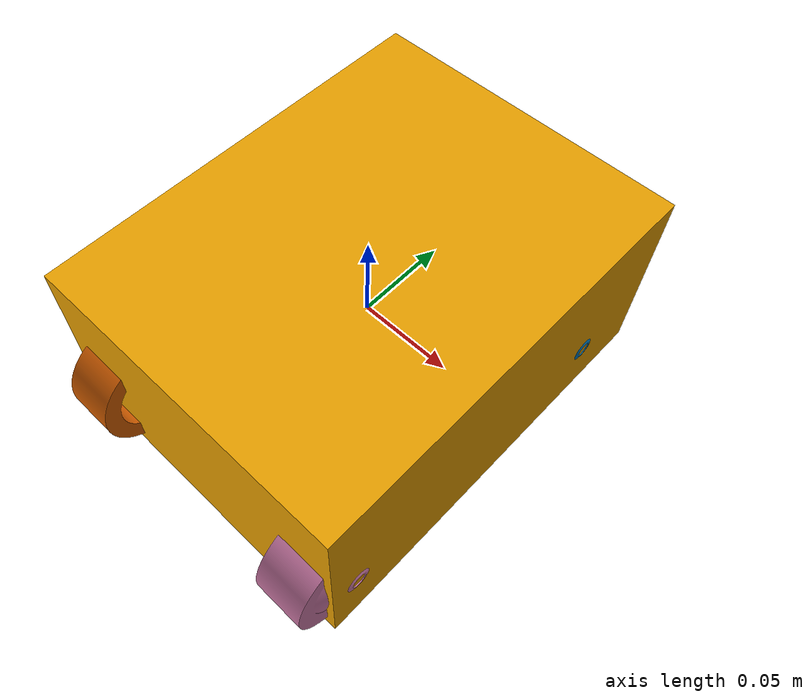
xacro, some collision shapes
<?xml version="1.0"?>
<robot name="car_like" xmlns:xacro="http://ros.org/wiki/xacro">

  <!-- Auto-generated from Blender (unit-fix: bbox->meters) -->
  <xacro:arg name="pkg" default="car_like_description"/>
  <xacro:arg name="mu1" default="2.5"/>
  <xacro:arg name="mu2" default="2.5"/>
  <xacro:property name="pkg" value="$(arg pkg)"/>
  <xacro:property name="mu1" value="$(arg mu1)"/>
  <xacro:property name="mu2" value="$(arg mu2)"/>

  <xacro:property name="mesh_dir" value="package://${pkg}/urdf/meshes"/>

  <xacro:arg name="ackermann_enabled" default="true"/>
  <xacro:arg name="ackermann_namespace" default=""/>
  <xacro:arg name="ackermann_cmd_vel_topic" default="cmd_vel"/>
  <xacro:arg name="ackermann_odom_topic" default="odom"/>
  <xacro:arg name="ackermann_distance_topic" default="distance"/>
  <xacro:arg name="ackermann_odometry_frame" default="odom"/>
  <xacro:arg name="ackermann_robot_base_frame" default="base_link"/>

  <!-- ========== LINKS ========== -->
  <link name="base_link">
    <visual>
      <origin xyz="0 0 0" rpy="0 0 0"/>
      <geometry>
        <mesh filename="${mesh_dir}/base_link.dae"/>
      </geometry>
    </visual>
    <collision>
      <origin xyz="0 0 0" rpy="0 0 0"/>
      <geometry>
        <box size="0.175621 0.225891 0.108579"/>
      </geometry>
    </collision>
    <inertial>
      <origin xyz="0 0 0" rpy="0 0 0"/>
      <mass value="10.768651"/>
      <inertia ixx="0.05637" ixy="0" ixz="0" iyy="0.038258" iyz="0" izz="0.073469"/>
    </inertial>
  </link>

  <link name="front_left_steer_link">
    <visual>
      <origin xyz="0 0 0" rpy="0 0 0"/>
      <geometry>
        <mesh filename="${mesh_dir}/front_left_steer_link.dae"/>
      </geometry>
    </visual>
    <collision>
      <origin xyz="0 0 0" rpy="0 0 0"/>
      <geometry>
        <box size="0.033318 0.033356 0.003"/>
      </geometry>
    </collision>
    <inertial>
      <origin xyz="0 0 0" rpy="0 0 0"/>
      <mass value="0.008335"/>
      <inertia ixx="0.000001" ixy="0" ixz="0" iyy="0.000001" iyz="0" izz="0.000002"/>
    </inertial>
  </link>

  <link name="front_right_steer_link">
    <visual>
      <origin xyz="0 0 0" rpy="0 0 0"/>
      <geometry>
        <mesh filename="${mesh_dir}/front_right_steer_link.dae"/>
      </geometry>
    </visual>
    <collision>
      <origin xyz="0 0 0" rpy="0 0 0"/>
      <geometry>
        <box size="0.033318 0.033356 0.003"/>
      </geometry>
    </collision>
    <inertial>
      <origin xyz="0 0 0" rpy="0 0 0"/>
      <mass value="0.008335"/>
      <inertia ixx="0.000001" ixy="0" ixz="0" iyy="0.000001" iyz="0" izz="0.000002"/>
    </inertial>
  </link>

  <link name="front_left_wheel">
    <visual>
      <origin xyz="0 0 0" rpy="0 0 0"/>
      <geometry>
        <mesh filename="${mesh_dir}/front_left_wheel.dae"/>
      </geometry>
    </visual>
    <collision>
      <origin xyz="0 0 0" rpy="0 1.570796 0"/>
      <geometry>
        <cylinder radius="0.0315" length="0.03165"/>
      </geometry>
    </collision>
    <inertial>
      <origin xyz="0 0 0" rpy="0 0 0"/>
      <mass value="0.246654"/>
      <inertia ixx="0.000122" ixy="0" ixz="0" iyy="0.000082" iyz="0" izz="0.000082"/>
    </inertial>
  </link>

  <link name="front_right_wheel">
    <visual>
      <origin xyz="0 0 0" rpy="0 0 0"/>
      <geometry>
        <mesh filename="${mesh_dir}/front_right_wheel.dae"/>
      </geometry>
    </visual>
    <collision>
      <origin xyz="0 0 0" rpy="0 1.570796 0"/>
      <geometry>
        <cylinder radius="0.0315" length="0.0315"/>
      </geometry>
    </collision>
    <inertial>
      <origin xyz="0 0 0" rpy="0 0 0"/>
      <mass value="0.245483"/>
      <inertia ixx="0.000122" ixy="0" ixz="0" iyy="0.000081" iyz="0" izz="0.000081"/>
    </inertial>
  </link>

  <link name="rear_left_wheel">
    <visual>
      <origin xyz="0 0 0" rpy="0 0 0"/>
      <geometry>
        <mesh filename="${mesh_dir}/rear_left_wheel.dae"/>
      </geometry>
    </visual>
    <collision>
      <origin xyz="0 0 0" rpy="0 1.570796 0"/>
      <geometry>
        <cylinder radius="0.0315" length="0.0315"/>
      </geometry>
    </collision>
    <inertial>
      <origin xyz="0 0 0" rpy="0 0 0"/>
      <mass value="0.245483"/>
      <inertia ixx="0.000122" ixy="0" ixz="0" iyy="0.000081" iyz="0" izz="0.000081"/>
    </inertial>
  </link>

  <link name="rear_right_wheel">
    <visual>
      <origin xyz="0 0 0" rpy="0 0 0"/>
      <geometry>
        <mesh filename="${mesh_dir}/rear_right_wheel.dae"/>
      </geometry>
    </visual>
    <collision>
      <origin xyz="0 0 0" rpy="0 1.570796 0"/>
      <geometry>
        <cylinder radius="0.031855" length="0.031571"/>
      </geometry>
    </collision>
    <inertial>
      <origin xyz="0 0 0" rpy="0 0 0"/>
      <mass value="0.251613"/>
      <inertia ixx="0.000128" ixy="0" ixz="0" iyy="0.000085" iyz="0" izz="0.000085"/>
    </inertial>
  </link>

  <!-- ========== JOINTS ========== -->
  <joint name="front_left_steer_joint" type="revolute">
    <parent link="base_link"/>
    <child link="front_left_steer_link"/>
    <origin xyz="-0.065239 0.066357 -0.017635" rpy="0 0 0"/>
    <axis xyz="0 0 1"/>
    <limit lower="-0.7" upper="0.7" effort="50" velocity="2.0"/>
    <dynamics damping="1.0" friction="0.2"/>
  </joint>
  <joint name="front_right_steer_joint" type="revolute">
    <parent link="base_link"/>
    <child link="front_right_steer_link"/>
    <origin xyz="0.072524 0.066228 -0.017635" rpy="0 0 0"/>
    <axis xyz="0 0 1"/>
    <limit lower="-0.7" upper="0.7" effort="50" velocity="2.0"/>
    <dynamics damping="1.0" friction="0.2"/>
  </joint>

  <joint name="front_left_wheel_joint" type="continuous">
    <parent link="front_left_steer_link"/>
    <child link="front_left_wheel"/>
    <origin xyz="0 0 0" rpy="0 0 0"/>
    <axis xyz="1 0 0"/>
    <dynamics damping="0.1" friction="0.0"/>
  </joint>
  <joint name="front_right_wheel_joint" type="continuous">
    <parent link="front_right_steer_link"/>
    <child link="front_right_wheel"/>
    <origin xyz="0 0 0" rpy="0 0 0"/>
    <axis xyz="1 0 0"/>
    <dynamics damping="0.1" friction="0.0"/>
  </joint>

  <joint name="rear_left_wheel_joint" type="continuous">
    <parent link="base_link"/>
    <child link="rear_left_wheel"/>
    <origin xyz="-0.065282 -0.097208 -0.017635" rpy="0 0 0"/>
    <axis xyz="1 0 0"/>
    <dynamics damping="0.1" friction="0.0"/>
  </joint>
  <joint name="rear_right_wheel_joint" type="continuous">
    <parent link="base_link"/>
    <child link="rear_right_wheel"/>
    <origin xyz="0.072523 -0.097281 -0.017635" rpy="0 0 0"/>
    <axis xyz="1 0 0"/>
    <dynamics damping="0.1" friction="0.0"/>
  </joint>

  <!-- ========== GAZEBO (friction) ========== -->
  <gazebo reference="base_link">
    <mu1>${mu1}</mu1>
    <mu2>${mu2}</mu2>
  </gazebo>
  <gazebo reference="front_left_steer_link">
    <mu1>${mu1}</mu1>
    <mu2>${mu2}</mu2>
  </gazebo>
  <gazebo reference="front_right_steer_link">
    <mu1>${mu1}</mu1>
    <mu2>${mu2}</mu2>
  </gazebo>
  <gazebo reference="front_left_wheel">
    <mu1>${mu1}</mu1>
    <mu2>${mu2}</mu2>
  </gazebo>
  <gazebo reference="front_right_wheel">
    <mu1>${mu1}</mu1>
    <mu2>${mu2}</mu2>
  </gazebo>
  <gazebo reference="rear_left_wheel">
    <mu1>${mu1}</mu1>
    <mu2>${mu2}</mu2>
  </gazebo>
  <gazebo reference="rear_right_wheel">
    <mu1>${mu1}</mu1>
    <mu2>${mu2}</mu2>
  </gazebo>

</robot>
